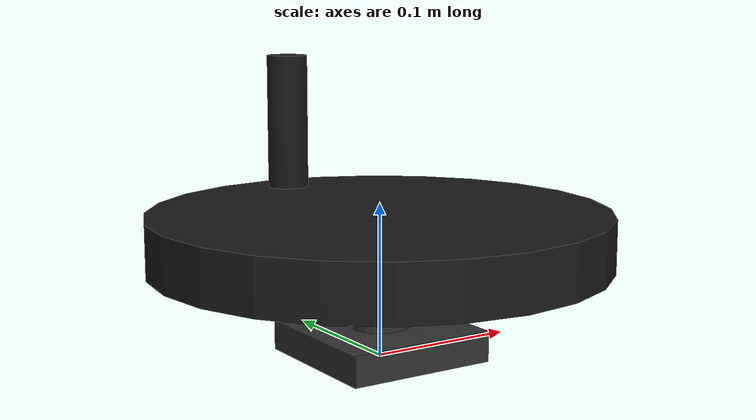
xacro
<?xml version="1.0"?>
<!-- Interactable Handle -->
<robot name="handle" xmlns:xacro="http://www.ros.org/wiki/xacro">

    <xacro:arg name="continuous" default="true"/>

    <xacro:macro name="handle" params="continuous:=true">

        <!-- Constants for Handle Dimensions -->
        <!-- Base -->
        <xacro:property name="width" value="0.1"/>
        <xacro:property name="height1" value="0.02"/>
        <xacro:property name="mass1" value="1"/>

        <!-- Neck -->
        <xacro:property name="length2" value="0.04"/>
        <xacro:property name="radius2" value="0.02"/>
        <xacro:property name="mass2" value="0.5"/>

        <!-- Ring -->
        <xacro:property name="length3" value="0.035"/>
        <xacro:property name="radius3" value="0.149"/>
        <xacro:property name="mass3" value="1"/>

        <!-- Grip -->
        <xacro:property name="length4" value="0.093"/>
        <xacro:property name="radius4" value="0.014"/>
        <xacro:property name="mass4" value="0.1"/>
        <xacro:property name="grip_offset_from_edge" value="0.016"/>

        <!-- Import all Gazebo-customization elements, including Gazebo colors -->
        <xacro:include filename="$(find manipulation_playground_articulated_devices)/devices/handle/model/handle.gazebo" />
        <!-- Import Rviz colors -->
        <xacro:include filename="$(find manipulation_playground_articulated_devices)/devices/handle/model/materials.xacro" />

        <!-- Used to fix device to world -->
        <link name="world"/>

        <joint name="handle_base_to_world" type="fixed">
            <parent link="world"/>
            <child link="base"/>
            <origin xyz="0 0 0" rpy="0 0 0"/>
        </joint>

        <!-- Handle Base -->
        <link name="base">
            <collision>
                <origin xyz="0 0 ${height1/2}" rpy="0 0 0"/>
                <geometry>
                    <box size="${width} ${width} ${height1}"/>
                </geometry>
            </collision>

            <visual>
                <origin xyz="0 0 ${height1/2}" rpy="0 0 0"/>
                <geometry>
                    <box size="${width} ${width} ${height1}"/>
                </geometry>
                <material name="grey"/>
            </visual>

            <inertial>
                <origin xyz="0 0 ${height1/2}" rpy="0 0 0"/>
                <mass value="${mass1}"/>
                <inertia
                    ixx="${mass1 / 12.0 * (width*width + height1*height1)}" ixy="0.0" ixz="0.0"
                    iyy="${mass1 / 12.0 * (height1*height1 + width*width)}" iyz="0.0"
                    izz="${mass1 / 12.0 * (width*width + width*width)}"/>
            </inertial>
        </link>

        <joint name="handle_handle_to_base" type="fixed">
            <parent link="base"/>
            <child link="handle"/>
            <origin xyz="0 0 ${height1}" rpy="0 0 0"/>
        </joint>

        <link name="handle">
            <inertial>
                <origin xyz="0 0 0" rpy="0 0 0" />
                <mass value="1" />
                <inertia
                ixx="1.0" ixy="0.0" ixz="0.0"
                iyy="1.0" iyz="0.0"
                izz="1.0" />
            </inertial>
        </link>

        <!-- Handle Joint -->
        <xacro:if value="${continuous}">
            <joint name="handle_joint" type="continuous">
                <parent link="handle"/>
                <child link="handle_rotated"/>
                <origin xyz="0 0 0" rpy="0 0 0"/>
                <axis xyz="0 0 1"/>
                <dynamics damping="0.0" friction="0.01" />
                <limit effort="100" velocity="0.5" />
            </joint>
        </xacro:if>

        <xacro:unless value="${continuous}">
            <joint name="handle_joint" type="revolute">
                <parent link="handle"/>
                <child link="handle_rotated"/>
                <origin xyz="0 0 0" rpy="0 0 0"/>
                <axis xyz="0 0 1"/>
                <dynamics damping="0.0" friction="0.01" />
                <limit effort="100" lower="-3.0" upper="3.0" velocity="0.5" />
            </joint>
        </xacro:unless>

        <transmission name="handle_trans">
            <type>transmission_interface/SimpleTransmission</type>
            <joint name="handle_joint">
                <hardwareInterface>hardware_interface/EffortJointInterface</hardwareInterface>
            </joint>
            <actuator name="handle_actuator">
                <hardwareInterface>hardware_interface/EffortJointInterface</hardwareInterface>
                <mechanicalReduction>1</mechanicalReduction>
            </actuator>
        </transmission>

        <!-- Handle Neck -->
        <link name="handle_rotated">
            <collision>
                <origin xyz="0 0 ${length2/2}" rpy="0 0 0"/>
                <geometry>
                    <cylinder radius="${radius2}" length="${length2}"/>
                </geometry>
            </collision>

            <visual>
                <origin xyz="0 0 ${length2/2}" rpy="0 0 0"/>
                <geometry>
                    <cylinder radius="${radius2}" length="${length2}"/>
                </geometry>
                <material name="grey"/>
            </visual>

            <inertial>
                <origin xyz="0 0 ${length2/2}" rpy="0 0 0"/>
                <mass value="${mass2}"/>
                <inertia
                    ixx="${mass2 / 12.0 * (3.0*radius2*radius2 + length2*length2)}" ixy="0.0" ixz="0.0"
                    iyy="${mass2 / 12.0 * (3.0*radius2*radius2 + length2*length2)}" iyz="0.0"
                    izz="${mass2 / 2.0 * (radius2*radius2)}"/>
            </inertial>
        </link>

        <joint name="handle_neck_to_ring" type="fixed">
            <parent link="handle_rotated"/>
            <child link="ring"/>
            <origin xyz="0 0 ${length2}" rpy="0 0 0"/>
        </joint>

        <!-- Handle Ring -->
        <link name="ring">
            <collision>
                <origin xyz="0 0 ${length3/2}" rpy="0 0 0"/>
                <geometry>
                    <cylinder radius="${radius3}" length="${length3}"/>
                </geometry>
            </collision>

            <visual>
                <origin xyz="0 0 ${length3/2}" rpy="0 0 0"/>
                <geometry>
                    <cylinder radius="${radius3}" length="${length3}"/>
                </geometry>
                <material name="dark_grey"/>
            </visual>

            <inertial>
                <origin xyz="0 0 ${length3/2}" rpy="0 0 0"/>
                <mass value="${mass3}"/>
                <inertia
                    ixx="${mass3 / 12.0 * (3.0*radius3*radius3 + length3*length3)}" ixy="0.0" ixz="0.0"
                    iyy="${mass3 / 12.0 * (3.0*radius3*radius3 + length3*length3)}" iyz="0.0"
                    izz="${mass3 / 2.0 * (radius3*radius3)}"/>
            </inertial>
        </link>

        <!-- Handle Grip Joint -->
        <joint name="handle_ring_to_grip" type="fixed">
            <parent link="ring"/>
            <child link="grip"/>
            <origin xyz="0 ${radius3-radius4-grip_offset_from_edge} ${length3}" rpy="0 0 0"/>
        </joint>

        <!-- Handle Grip -->
        <link name="grip">
            <collision>
                <origin xyz="0 0 ${length4/2}" rpy="0 0 0"/>
                <geometry>
                    <cylinder radius="${radius4}" length="${length4}"/>
                </geometry>
            </collision>

            <visual>
                <origin xyz="0 0 ${length4/2}" rpy="0 0 0"/>
                <geometry>
                    <cylinder radius="${radius4}" length="${length4}"/>
                </geometry>
                <material name="dark_grey"/>
            </visual>

            <inertial>
                <origin xyz="0 0 ${length4/2}" rpy="0 0 0"/>
                <mass value="${mass4}"/>
                <inertia
                    ixx="${mass4 / 12.0 * (3.0*radius4*radius4 + length4*length4)}" ixy="0.0" ixz="0.0"
                    iyy="${mass4 / 12.0 * (3.0*radius4*radius4 + length4*length4)}" iyz="0.0"
                    izz="${mass4 / 2.0 * (radius4*radius4)}"/>
            </inertial>
        </link>
    </xacro:macro>

    <xacro:handle continuous="$(arg continuous)"/>
</robot>

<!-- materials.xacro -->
<robot>

  <material name="dark_grey">
    <color rgba="0.1 0.1 0.1 1.0"/>
  </material>

  <material name="blue">
    <color rgba="0.0 0.0 0.8 1.0"/>
  </material>

  <material name="green">
    <color rgba="0.0 0.8 0.0 1.0"/>
  </material>

  <material name="grey">
    <color rgba="0.2 0.2 0.2 1.0"/>
  </material>

  <material name="orange">
    <color rgba="${255/255} ${108/255} ${10/255} 1.0"/>
  </material>

  <material name="brown">
    <color rgba="${222/255} ${207/255} ${195/255} 1.0"/>
  </material>

  <material name="red">
    <color rgba="0.8 0.0 0.0 1.0"/>
  </material>

  <material name="white">
    <color rgba="1.0 1.0 1.0 1.0"/>
  </material>

  <material name="yellow">
    <color rgba="${255/255} ${240/255} 0.0 1.0"/>
  </material>

</robot>
